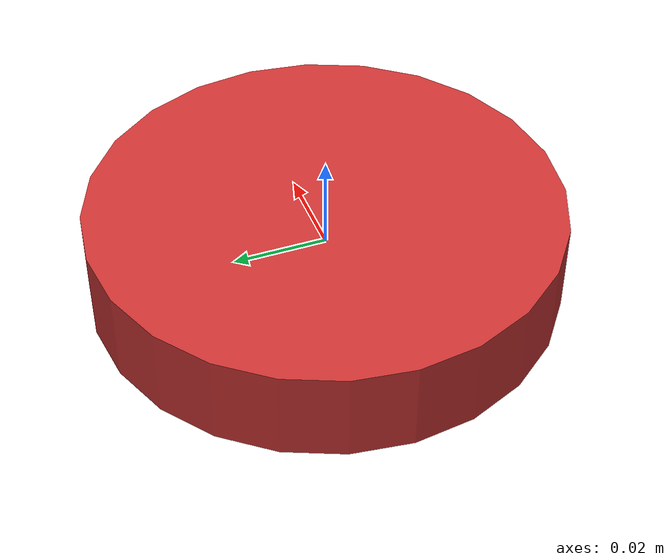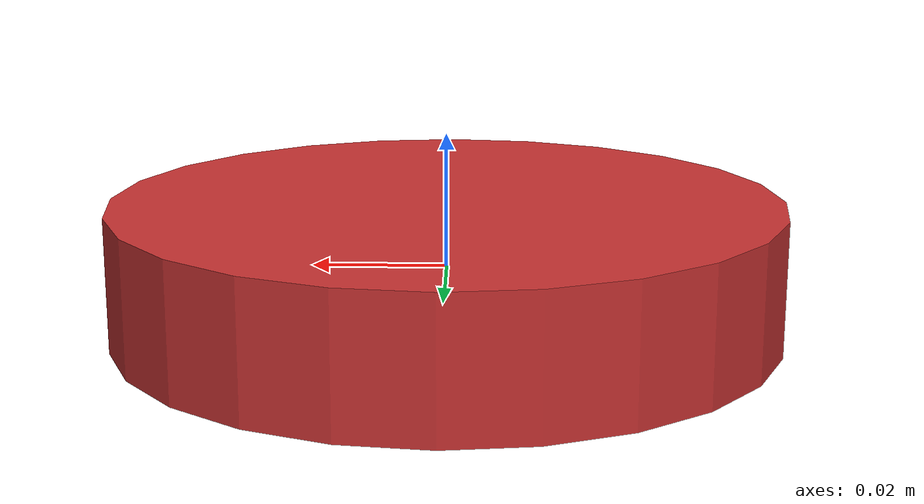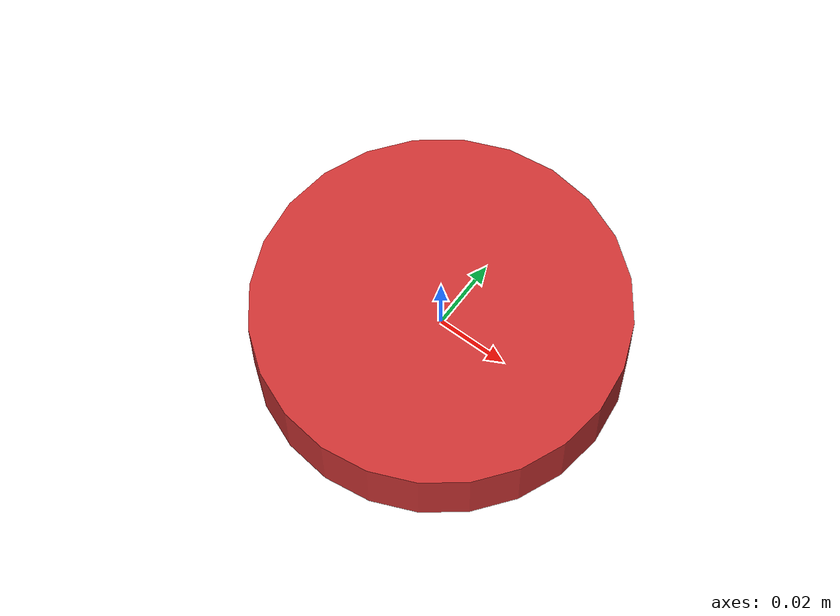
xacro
<?xml version="1.0"?>
<robot xmlns:xacro="http://www.ros.org/wiki/xacro" name="connect_robot">
  <!-- This first link called "my world" is empty -->
  <link name="my world"></link>

  <!-- Define the connector link -->
  <link name="connector_link">

    <!-- Visual Properties -->
    <visual name="">
      <geometry>
        <cylinder radius="0.05" length="0.02"/>
      </geometry>
      <material name="">
        <color rgba="0.8 0.2 0.2 1.0"/>
      </material>
    </visual>

    <!-- Collision Properties -->
    <collision>
      <geometry>
        <cylinder radius="0.05" length="0.02"/>
      </geometry>
    </collision>

    <!-- Inertial Properties -->
    <inertial>
      <mass value="0.1"/>
      <origin xyz="0 0 0" rpy="0 0 0"/>
      <inertia ixx="0.0001" ixy="0.0" ixz="0.0"
               iyy="0.0001" iyz="0.0"
               izz="0.0001"/>
    </inertial>

    <!-- Plugin to apply the force -->
    <gazebo>
      <plugin name="ignition::gazebo::systems::ApplyLinkWrench"
              filename="libignition-gazebo-apply-link-wrench-system.so">
        <link_name>connector_link</link_name>
        <topic>/moving_cube/connect_robot/connector_link/wrench</topic>
      </plugin>
    </gazebo>
  </link>

  <!-- Define a joint if needed -->
  <!-- Example of a fixed joint -->
  <joint name="connector_joint" type="fixed">
    <parent link="my world"/>
    <child link="connector_link"/>
    <origin xyz="0 0 0" rpy="0 0 0"/>
  </joint>
</robot>
